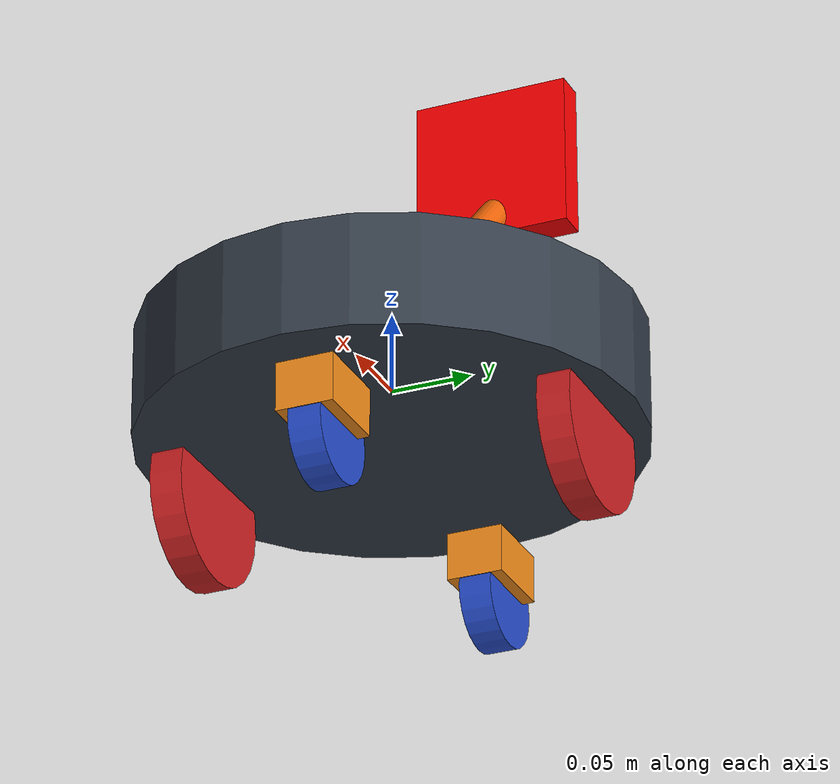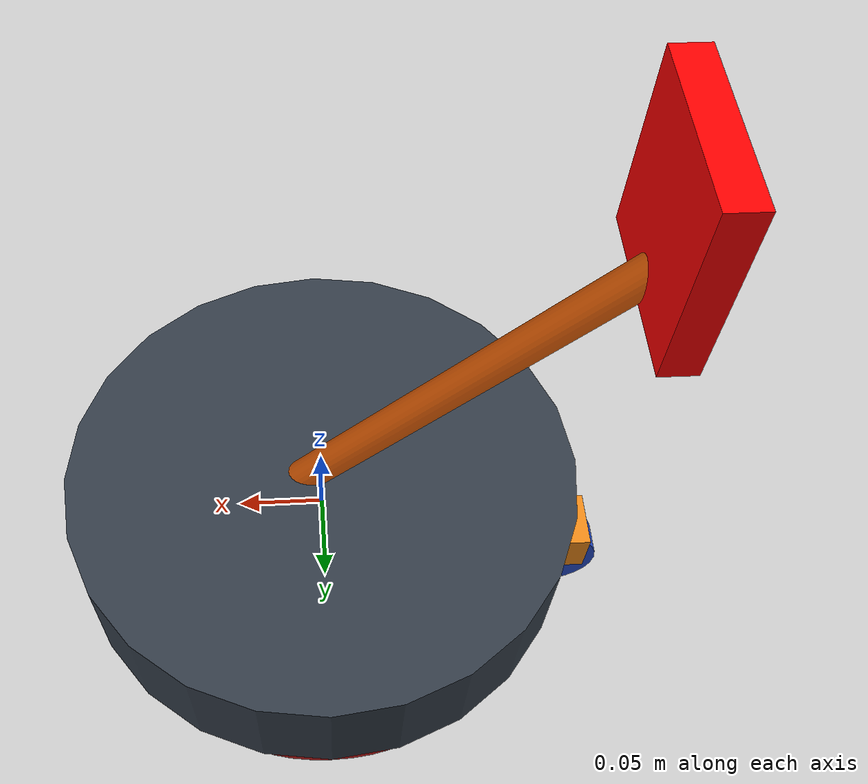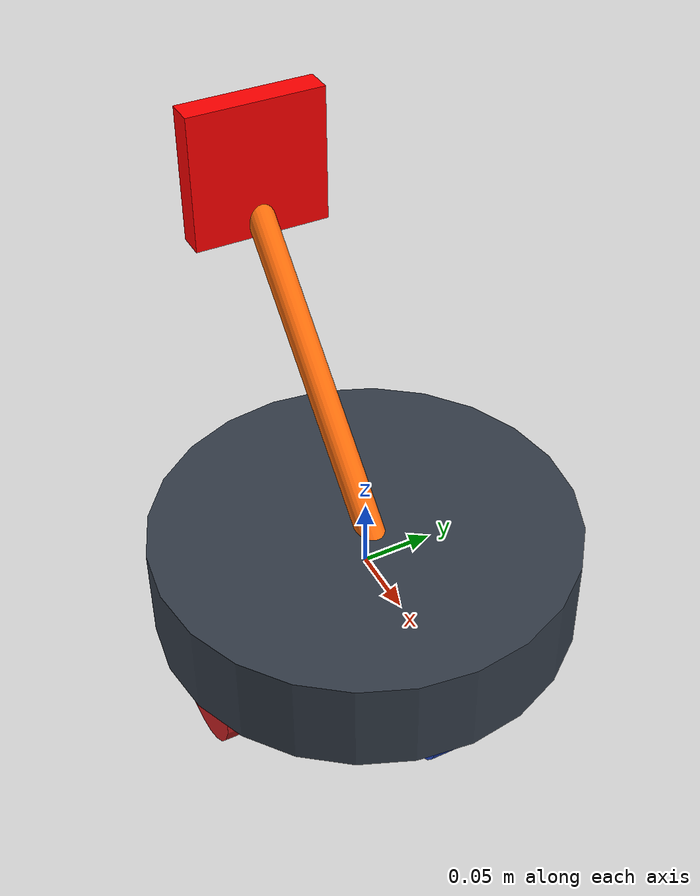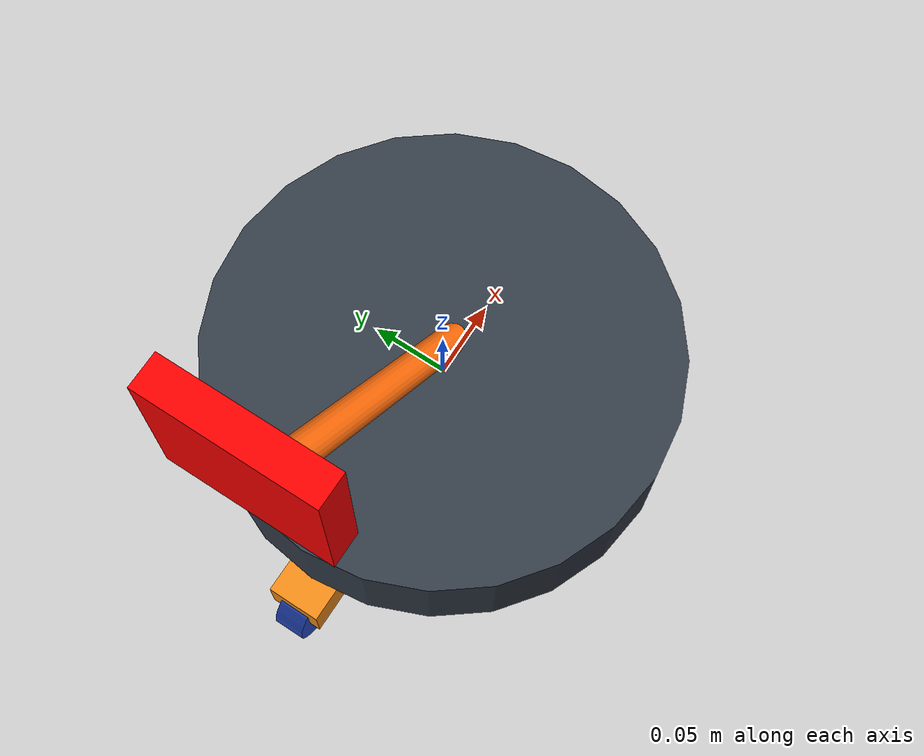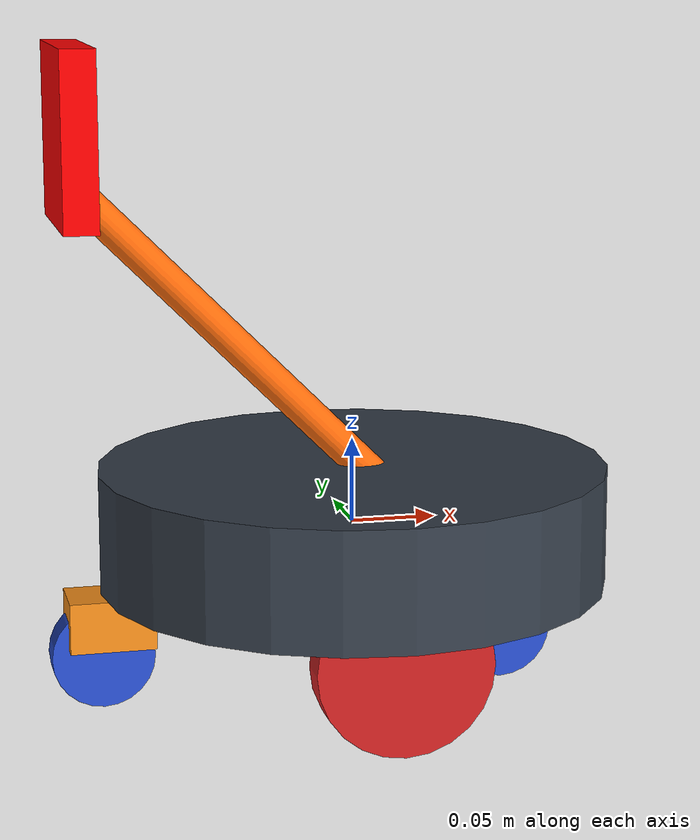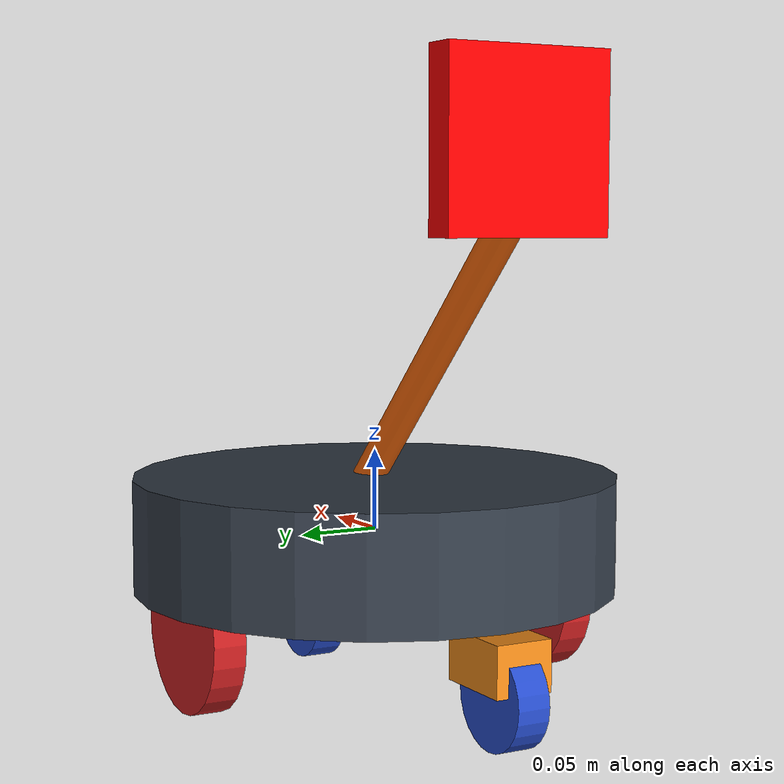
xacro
<?xml version="1.0"?>
<robot xmlns:xacro="http://www.ros.org/wiki/xacro" name="robot_xacro">
  <xacro:include filename="$(find exp_assignment3_pkg)/urdf/robot.gazebo"/>

  <xacro:property name="length_wheel" value="0.02" />
  <xacro:property name="radius_wheel" value="0.05" />

  <xacro:macro name="default_inertial" params="mass">
    <inertial>
      <mass value="${mass}" />
      <origin rpy="0 1.5707 1.5707" xyz="0 0 0"/>
      <inertia ixx="0.000526666666667" ixy="0" ixz="0" iyy="0.000526666666667" iyz="0" izz="0.001"/>
    </inertial>
  </xacro:macro>

  <xacro:macro name="cuboid_inertial" params="mass length width height">
    <inertial>
      <mass value="${mass}"/>
      <inertia ixx="${0.83*mass*(width+height)}" ixy="0.0" ixz="0.0" iyy="${0.83*mass*(length+height)}" iyz="0.0" izz="${0.83*mass*(width+length)}" />
    </inertial>
  </xacro:macro>

  <xacro:macro name="wheel_geometry">
    <geometry>
      <cylinder length="${length_wheel}" radius="${radius_wheel}"/>
    </geometry>
  </xacro:macro>

  <material name="black">
    <color rgba="0.0 0.0 0.0 1.0"/>
  </material>
  <material name="blue">
    <color rgba="0.203125 0.23828125 0.28515625 1.0"/>
  </material>
  <material name="green">
    <color rgba="0.0 0.8 0.0 1.0"/>
  </material>
  <material name="grey">
    <color rgba="0.2 0.2 0.2 1.0"/>
  </material>
  <material name="orange">
    <color rgba="1.0 0.423529411765 0.0392156862745 1.0"/>
  </material>
  <material name="brown">
    <color rgba="0.870588235294 0.811764705882 0.764705882353 1.0"/>
  </material>
  <material name="red">
    <color rgba="0.80078125 0.12890625 0.1328125 1.0"/>
  </material>
  <material name="white">
    <color rgba="1.0 1.0 1.0 1.0"/>
  </material>

  <link name="link_chassis">
    <!-- pose and inertial -->
    <pose>0 0 0.1 0 0 0</pose>
    <xacro:cuboid_inertial mass="10" length="0.5" width="0.5" height="0.07"/>
    <!-- body -->
    <collision name="collision_chassis">
      <origin rpy="0 0 0" xyz="0 0 0"/>
      <geometry>
        <cylinder radius="0.12" length="0.07"/>
      </geometry>
    </collision>
    <visual>
      <origin rpy="0 0 0" xyz="0 0 0"/>
      <geometry>
        <cylinder radius="0.15" length="0.07"/>
      </geometry>
      <material name="blue"/>
    </visual>
  </link>

  <link name="link_right_wheel">
    <xacro:default_inertial mass="0.2"/>
    <collision name="link_right_wheel_collision">
      <origin rpy="0 1.5707 1.5707" xyz="0 0 0"/>
      <xacro:wheel_geometry />
    </collision>
    <visual name="link_right_wheel_visual">
      <origin rpy="0 1.5707 1.5707" xyz="0 0 0"/>
      <xacro:wheel_geometry />
      <material name="red"/>
    </visual>
  </link>

  <link name="link_left_wheel">
    <xacro:default_inertial mass="0.2"/>
    <collision name="link_left_wheel_collision">
      <origin rpy="0 1.5707 1.5707" xyz="0 0 0"/>
      <xacro:wheel_geometry />
    </collision>
    <visual name="link_left_wheel_visual">
      <origin rpy="0 1.5707 1.5707" xyz="0 0 0"/>
      <xacro:wheel_geometry />
      <material name="red"/>
    </visual>
  </link>

  <joint name="joint_right_wheel" type="continuous">
    <origin rpy="0 0 0" xyz="0 -0.12 -0.05"/>
    <child link="link_right_wheel"/>
    <parent link="link_chassis"/>
    <axis rpy="0 0 0" xyz="0 1 0"/>
    <limit effort="10000" velocity="1000"/>
    <joint_properties damping="1.0" friction="1.0"/>
  </joint>

  <joint name="joint_left_wheel" type="continuous">
    <origin rpy="0 0 0" xyz="0 +0.12 -0.05"/>
    <child link="link_left_wheel"/>
    <parent link="link_chassis"/>
    <axis rpy="0 0 0" xyz="0 1 0"/>
    <limit effort="10000" velocity="1000"/>
    <joint_properties damping="1.0" friction="1.0"/>
  </joint>

  <link name="neck_link">
    <collision>
      <origin xyz="0 0 0.1" rpy="0 0 0"/>
      <geometry>
        <cylinder radius="0.01" length="0.25"/>
      </geometry>
    </collision>
    <visual>
      <origin xyz="0 0 0.1" rpy="0 0 0"/>
      <geometry>
        <cylinder radius="0.01" length="0.25"/>
      </geometry>
      <material name="orange"/>
    </visual>
    <inertial>
      <mass value="0.5" />
      <origin xyz="0 0 0" rpy="0 0 0"/>
      <inertia ixx="1e-6" ixy="0" ixz="0" iyy="1e-6" iyz="0" izz="1e-6" />
    </inertial>
  </link>

  <joint name="neck_joint" type="fixed">
    <origin xyz="0 0 0.04" rpy="0 -0.785 0"/>
    <parent link="link_chassis"/>
    <child link="neck_link"/>
  </joint>

  <link name="head_link">
    <collision>
      <origin xyz="-0.02 0 0.05" rpy="0 0 0"/>
      <geometry>
        <box size="0.02 0.1 0.1"/>
      </geometry>
    </collision>
    <visual>
      <origin xyz="-0.02 0 0.05" rpy="0 0 0"/>
      <geometry>
        <box size="0.02 0.1 0.1"/>
      </geometry>
      <material name="red">
        <color rgba="1 0 0 1"/>
      </material>
    </visual>
    <xacro:cuboid_inertial mass="0.3" length="0.25" width="0.1" height="0.05"/>
  </link>

  <joint name="head_joint" type="fixed">
    <origin xyz="0 0 0.2" rpy="0 0.785 0"/>
    <parent link="neck_link"/>
    <child link="head_link"/>
  </joint>

  <link name="laser_link"></link>

  <joint name="laser_joint" type="fixed">
    <origin xyz="0.01 0 0" rpy="0 0 0"/>
    <parent link="head_link"/>
    <child link="laser_link"/>
  </joint>

  <link name="camera_link"></link>

  <joint name="camera_joint" type="fixed">
    <origin xyz="0.01 0 0" rpy="0 0 0"/>
    <parent link="head_link"/>
    <child link="camera_link"/>
  </joint>

  <link name="link_castor_axis">
    <!-- pose and inertial -->
    <pose>0 0 0.1 0 0 0</pose>
    <xacro:cuboid_inertial mass="0.2" length="0.05" width="0.035" height="0.03"/>
    <!-- body -->
    <collision name="collision_chassis">
      <origin rpy="0 0 0" xyz="-0.01 0 0"/>
      <geometry>
        <box size="0.05 0.035 0.03"/>
      </geometry>
    </collision>
    <visual>
      <origin rpy="0 0 0" xyz="-0.025 0 0"/>
      <geometry>
        <box size="0.05 0.035 0.03"/>
      </geometry>
    </visual>
  </link>

  <link name="link_castor_wheel">
    <xacro:default_inertial mass="0.2"/>
    <collision name="link_castor_wheel_collision">
      <origin rpy="0 1.5707 1.5707" xyz="0 0 0"/>
      <geometry>
        <cylinder length="0.02" radius="0.03"/>
      </geometry>
    </collision>
    <visual name="link_castor_wheel_visual">
      <origin rpy="0 1.5707 1.5707" xyz="0 0 0"/>
      <geometry>
        <cylinder length="0.02" radius="0.03"/>
      </geometry>
    </visual>
  </link>

  <joint name="joint_castor_wheel" type="continuous">
    <origin rpy="0 0 0" xyz="-0.03 0 -0.02"/>
    <child link="link_castor_wheel"/>
    <parent link="link_castor_axis"/>
    <axis rpy="0 0 0" xyz="0 1 0"/>
    <limit effort="10000" velocity="1000"/>
    <joint_properties damping="1.0" friction="1.0"/>
  </joint>

  <joint name="joint_castor_axis" type="continuous">
    <origin rpy="0 0 0" xyz="-0.12 0 -0.05"/>
    <child link="link_castor_axis"/>
    <parent link="link_chassis"/>
    <axis rpy="0 0 0" xyz="0 0 1"/>
    <limit effort="10000" velocity="1000"/>
    <joint_properties damping="1.0" friction="1.0"/>
  </joint>

  <link name="link_castor_axis2">
    <!-- pose and inertial -->
    <pose>0 0 0.1 0 0 0</pose>
    <xacro:cuboid_inertial mass="0.2" length="0.05" width="0.035" height="0.03"/>
    <!-- body -->
    <collision name="collision_chassis">
      <origin rpy="0 0 0" xyz="-0.01 0 0"/>
      <geometry>
        <box size="0.05 0.035 0.03"/>
      </geometry>
    </collision>
    <visual>
      <origin rpy="0 0 0" xyz="-0.025 0 0"/>
      <geometry>
        <box size="0.05 0.035 0.03"/>
      </geometry>
    </visual>
  </link>

  <link name="link_castor_wheel2">
    <xacro:default_inertial mass="0.2"/>
    <collision name="link_castor_wheel2_collision">
      <origin rpy="0 1.5707 1.5707" xyz="0 0 0"/>
      <geometry>
        <cylinder length="0.02" radius="0.03"/>
      </geometry>
    </collision>
    <visual name="link_castor_wheel2_visual">
      <origin rpy="0 1.5707 1.5707" xyz="0 0 0"/>
      <geometry>
        <cylinder length="0.02" radius="0.03"/>
      </geometry>
    </visual>
  </link>

  <joint name="joint_castor_wheel2" type="continuous">
    <origin rpy="0 0 0" xyz="-0.03 0 -0.02"/>
    <child link="link_castor_wheel2"/>
    <parent link="link_castor_axis2"/>
    <axis rpy="0 0 0" xyz="0 1 0"/>
    <limit effort="10000" velocity="1000"/>
    <joint_properties damping="1.0" friction="1.0"/>
  </joint>

  <joint name="joint_castor_axis2" type="continuous">
    <origin rpy="0 0 0" xyz="0.12 0 -0.05"/>
    <child link="link_castor_axis2"/>
    <parent link="link_chassis"/>
    <axis rpy="0 0 0" xyz="0 0 1"/>
    <limit effort="10000" velocity="1000"/>
    <joint_properties damping="1.0" friction="1.0"/>
  </joint>

</robot>
